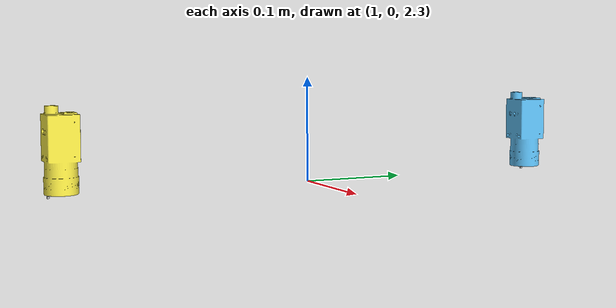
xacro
<?xml version="1.0"?>
<robot name="stereo" xmlns:xacro="http://ros.org/wiki/xacro" >

  <!-- Set up definitions of parts of the robot body -->

  <xacro:include filename="$(find basler_camera_gazebo)/xacro/left_camera.xacro" />
  <xacro:include filename="$(find basler_camera_gazebo)/xacro/right_camera.xacro" />

  <property name="robot_name" value="stereo"/>

  <link name="world"/>

  <xacro:left_camera prefix="${robot_name}" parent="world"/>-->
  <xacro:right_camera prefix="${robot_name}" parent="left_camera_link"/>

</robot>

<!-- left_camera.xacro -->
<robot xmlns:xacro="http://ros.org/wiki/xacro" >

  <property name="M_PI" value="3.1415926535897931" />
  <property name="cam_px" value=" 1.0" />
  <property name="cam_py" value=" .25" />
  <property name="cam_pz" value=" 2.3" />
	<property name="cam_or" value=" 0." />
	<property name="cam_op" value=" 1.57" />
	<property name="cam_oy" value=" 0" />

  <xacro:property name="width" value="0.05" /> <!-- Square dimensions (widthxwidth) of beams -->
  <xacro:property name="height" value="0.1" /> <!-- Square dimensions (widthxwidth) of beams -->

  <xacro:macro name="left_camera" params="prefix parent">

    <link name="left_camera_link">
      <visual name='visual'>
        <origin xyz="0.0 0.0 0.0" rpy="0 3.1415 0"/>
        <geometry>
          <mesh filename="package://basler_stereo/objects/BodyWithLence.dae"/>
        </geometry>
      </visual>
      <collision>
        <origin xyz="0.0 0.0 0.0" rpy="0 0 0"/>
        <geometry>
          <box size="0.07271 0.27794 0.073"/>
        </geometry>
      </collision>
      <inertial>
        <mass value="0.001" />
        <origin xyz="0 0 0" />
        <inertia ixx="0.0001" ixy="0.0" ixz="0.0"
                 iyy="0.0001" iyz="0.0"
                 izz="0.0001" />
      </inertial>
    </link>

       <joint name="left_camera_joint" type="fixed">
      <origin xyz="${cam_px} ${cam_py} ${cam_pz}" rpy="${cam_or} ${cam_op} ${cam_oy}"/>
      <parent link="${parent}"/>
      <child link="left_camera_link"/>
    </joint>

    <joint name="left_camera_optical_joint" type="fixed">
      <origin xyz="0.000 0 0.000" rpy="-1.57 0 -1.57"/>
      <parent link="left_camera_link"/>
      <child link="left_camera_optical_frame" />
    </joint>
    <link name="left_camera_optical_frame">
      <inertial>
        <mass value="0.001" />
        <origin xyz="0 0 0" />
        <inertia ixx="0.0001" ixy="0.0" ixz="0.0"
                 iyy="0.0001" iyz="0.0"
                 izz="0.0001" />
      </inertial>
    </link>

      <!-- camera -->
  <gazebo reference="left_camera_link">
    <sensor type="camera" name="camera_left">
      <update_rate>30.0</update_rate>
      <camera name="head">
        <horizontal_fov>1.57</horizontal_fov><!-- in radians -->
        <image>
          <width>2590</width>
          <height>1942</height>
          <format>R8G8B8</format>
        </image>
        <clip>
          <near>0.02</near>
          <far>300</far>
        </clip>
        <noise>
          <type>gaussian</type>
          <!-- Noise is sampled independently per pixel on each frame.
               That pixel's noise value is added to each of its color
               channels, which at that point lie in the range [0,1]. -->
          <mean>0.0</mean>
          <stddev>0.007</stddev>
        </noise>
      </camera>
      <plugin name="camera_controller" filename="libgazebo_ros_camera.so">
        <alwaysOn>true</alwaysOn>
        <updateRate>0.0</updateRate>
        <cameraName>stereo/left</cameraName>
        <imageTopicName>image_raw</imageTopicName>
        <cameraInfoTopicName>camera_info</cameraInfoTopicName>
        <frameName>left_camera_link</frameName>
        <hackBaseline>0.07</hackBaseline>
        <distortionK1>0.0</distortionK1>
        <distortionK2>0.0</distortionK2>
        <distortionK3>0.0</distortionK3>
        <distortionT1>0.0</distortionT1>
        <distortionT2>0.0</distortionT2>
      </plugin>
    </sensor>
  </gazebo>
  </xacro:macro>

</robot>

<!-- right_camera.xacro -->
<robot xmlns:xacro="http://ros.org/wiki/xacro" >

  <property name="M_PI" value="3.1415926535897931" />
	<property name="right_cam_px" value=" 0." />
	<property name="right_cam_py" value=" -0.5" />
	<property name="right_cam_pz" value=" 0." />
	<property name="right_cam_or" value=" 0." />
	<property name="right_cam_op" value=" 0" />
	<property name="right_cam_oy" value=" 0" />

  <xacro:property name="width" value="0.05" /> <!-- Square dimensions (widthxwidth) of beams -->
  <xacro:property name="height" value="0.1" /> <!-- Square dimensions (widthxwidth) of beams -->

  <xacro:macro name="right_camera" params="prefix parent">

    <joint name="right_camera_joint" type="fixed">
      <origin xyz="${right_cam_px} ${right_cam_py} ${right_cam_pz}" rpy="${right_cam_or} ${right_cam_op} ${right_cam_oy}"/>
      <parent link="${parent}"/>
      <child link="right_camera_link"/>
    </joint>
    <link name="right_camera_link">
      <visual>
        <origin xyz="0.0 0.0 0.0" rpy="0 3.1415 0"/>
        <geometry>
            <mesh filename="package://basler_stereo/objects/BodyWithLence.dae"/>
        </geometry>
      </visual>
      <collision>
        <origin xyz="0.0 0.0 0.0" rpy="0 0 0"/>
        <geometry>
          <box size="0.07271 0.27794 0.073"/>
        </geometry>
      </collision>
      <inertial>
        <mass value="0.001" />
        <origin xyz="0 0 0" />
        <inertia ixx="0.0001" ixy="0.0" ixz="0.0"
                 iyy="0.0001" iyz="0.0"
                 izz="0.0001" />
      </inertial>
    </link>
    <joint name="right_camera_optical_joint" type="fixed">
      <origin xyz="0.000 0 0.000" rpy="-1.57 0 -1.57"/>
      <parent link="right_camera_link"/>
      <child link="right_camera_optical_frame" />
    </joint>
    <link name="right_camera_optical_frame">
      <inertial>
        <mass value="0.001" />
        <origin xyz="0 0 0" />
        <inertia ixx="0.0001" ixy="0.0" ixz="0.0"
                 iyy="0.0001" iyz="0.0"
                 izz="0.0001" />
      </inertial>
    </link>

      <!-- camera -->
  <gazebo reference="right_camera_link">
    <sensor type="camera" name="camera_right">
      <update_rate>30.0</update_rate>
      <camera name="head">
        <horizontal_fov>1.57</horizontal_fov><!-- in radians -->
        <image>
          <width>2590</width>
          <height>1942</height>
          <format>R8G8B8</format>
        </image>
        <clip>
          <near>0.02</near>
          <far>300</far>
        </clip>
        <noise>
          <type>gaussian</type>
          <!-- Noise is sampled independently per pixel on each frame.
               That pixel's noise value is added to each of its color
               channels, which at that point lie in the range [0,1]. -->
          <mean>0.0</mean>
          <stddev>0.007</stddev>
        </noise>
      </camera>
      <plugin name="camera_controller" filename="libgazebo_ros_camera.so">
        <alwaysOn>true</alwaysOn>
        <updateRate>0.0</updateRate>
        <cameraName>stereo/right</cameraName>
        <imageTopicName>image_raw</imageTopicName>
        <cameraInfoTopicName>camera_info</cameraInfoTopicName>
        <frameName>right_camera_link</frameName>
        <hackBaseline>0.07</hackBaseline>
        <distortionK1>0.0</distortionK1>
        <distortionK2>0.0</distortionK2>
        <distortionK3>0.0</distortionK3>
        <distortionT1>0.0</distortionT1>
        <distortionT2>0.0</distortionT2>
      </plugin>
    </sensor>
  </gazebo>
  </xacro:macro>

</robot>
